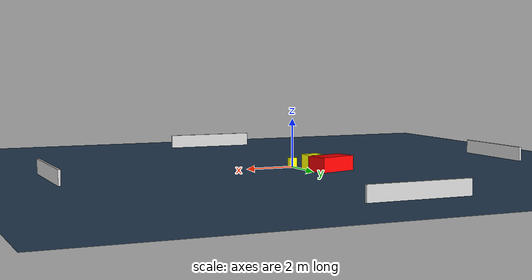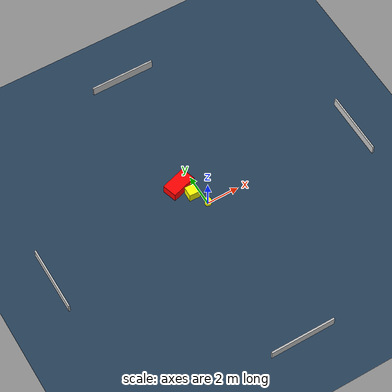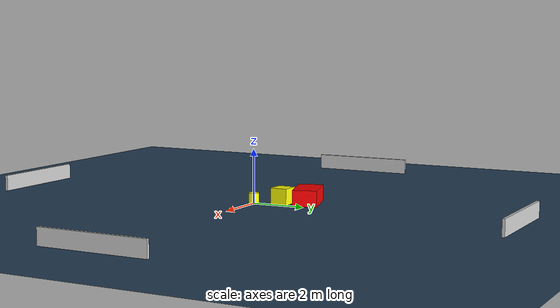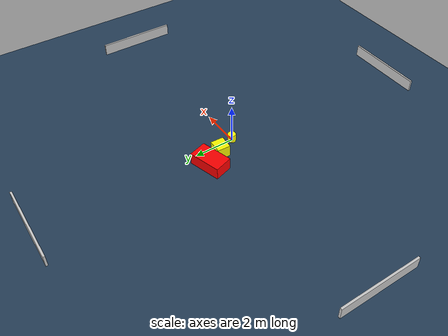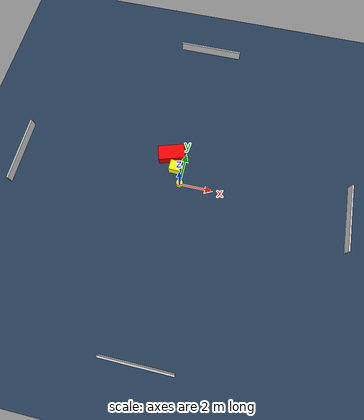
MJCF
<?xml version="1.0" ?>
<mujoco model="generated_environment">
  <option timestep="0.01" integrator="RK4" cone="elliptic"/>
  <default>
    <geom density="1"/>
  </default>
  <asset>
    <texture builtin="gradient" height="3072" name="skybox" rgb1="0.3 0.5 0.7" rgb2="0 0 0" type="skybox" width="512"/>
    <texture builtin="checker" height="300" name="groundplane" rgb1="0.2 0.3 0.4" rgb2="0.1 0.2 0.3" type="2d" width="300"/>
    <material name="groundplane" reflectance="0.2" texrepeat="5 5" texture="groundplane"/>
  </asset>
  <worldbody>
    <light dir="0 0 -1" directional="true" pos="0 0 1.5"/>
    <geom condim="3" friction="0.5 0.005 0.001" material="groundplane" name="floor" pos="0 0 0" size="0 0 0.05" type="plane"/>
    <body name="walls">
      <geom name="wall_1" condim="4" pos="-10.0 0.0 0.3" rgba="0.800000011920929 0.800000011920929 0.800000011920929 1.0" size="0.05 2.0 0.3" type="box"/>
      <geom name="wall_2" condim="4" pos="10.0 0.0 0.3" rgba="0.800000011920929 0.800000011920929 0.800000011920929 1.0" size="0.05 2.0 0.3" type="box"/>
      <geom name="wall_3" condim="4" pos="0.0 -10.0 0.3" rgba="0.800000011920929 0.800000011920929 0.800000011920929 1.0" size="2.0 0.05 0.3" type="box"/>
      <geom name="wall_4" condim="4" pos="0.0 10.0 0.3" rgba="0.800000011920929 0.800000011920929 0.800000011920929 1.0" size="2.0 0.05 0.3" type="box"/>
    </body>
    <body name="robot">
      <joint name="joint_x" type="slide" pos="0 0 0" axis="1 0 0"/>
      <joint name="joint_y" type="slide" pos="0 0 0" axis="0 1 0"/>
      <geom name="robot" type="cylinder" pos="0.0 0.0 0.2" size="0.2 0.2 0.0" mass="5.0" friction="1.0 0.005 0.0001" condim="4" rgba="1.0 1.0 0.0 1.0"/>
    </body>
    <body name="obstacle_1_movable">
      <geom name="obstacle_1_movable" condim="4" pos="-0.475704857262769 0.9469405062229371 0.3" euler="0 0 358.08388168773655" friction="0.0 0.005 0.001" rgba="1.0 1.0 0.0 1.0" size="0.34064430326512196 0.32140659227299495 0.3" type="box" mass="0.1"/>
      <joint type="free"/>
    </body>
    <body name="obstacle_2_static">
      <geom name="obstacle_2_static" condim="4" pos="-0.8946615532303642 1.7663077781076577 0.3" euler="0 0 197.04148363909647" friction="0.0 0.005 0.001" rgba="1.0 0.0 0.0 1.0" size="0.7984781485886949 0.45101246414510643 0.3" type="box"/>
    </body>
  </worldbody>
  <actuator>
    <motor name="actuator_x" joint="joint_x" gear="1" ctrlrange="-1 1"/>
    <motor name="actuator_y" joint="joint_y" gear="1" ctrlrange="-1 1"/>
  </actuator>
</mujoco>
